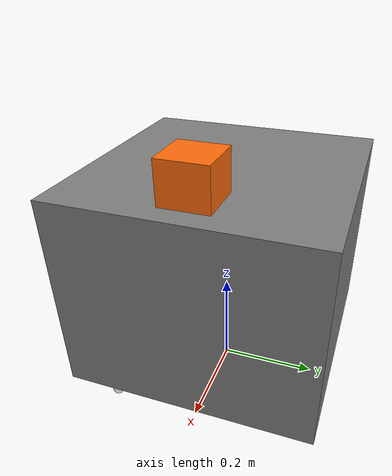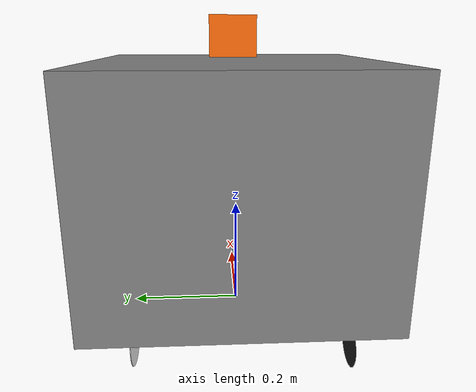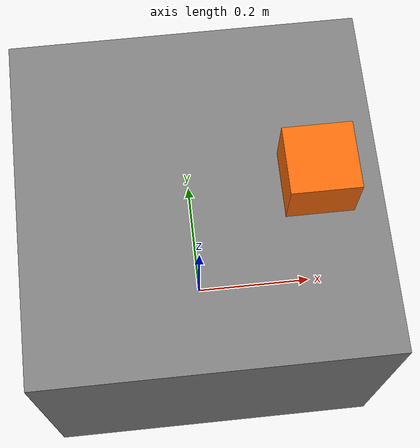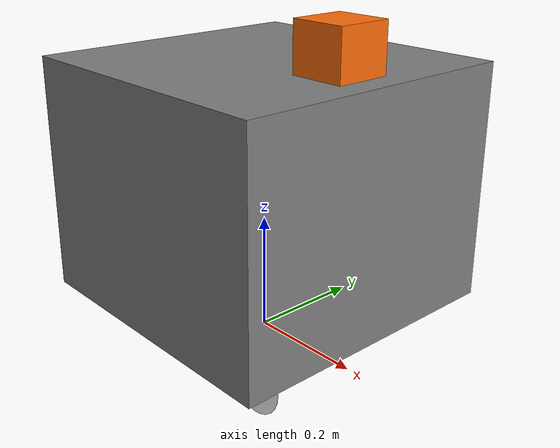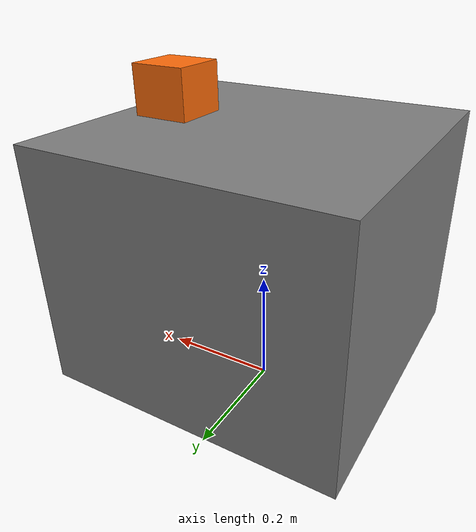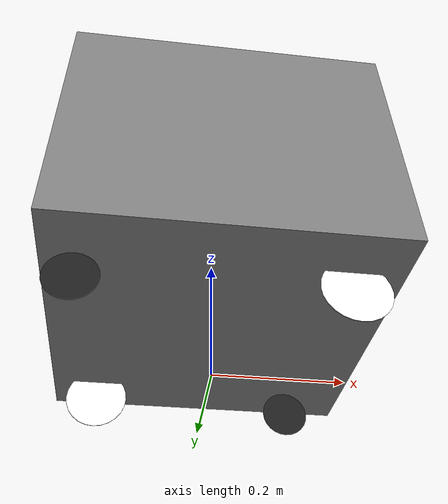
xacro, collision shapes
<?xml version="1.0"?>
<robot xmlns:xacro="http://ros.org/wiki/xacro" name="I2ws" >

    <xacro:arg name="model_dir" default="$(find tuw_gazebo_models)/models/platforms/i2ws"/>

    <!-- Import colors (for Rviz)-->
    <xacro:include filename="$(find tuw_gazebo_models)/models/materials.xacro" />

    <!-- Import robot -->
    <xacro:property name="model_dir" value="$(arg model_dir)/i2ws_body"/>
    <xacro:include filename="${model_dir}/body.xacro"/>
    <xacro:I2wsBody name="body" parent="base" mesh_collis="simplified" mesh_visual="detailed"/><!-- simplified detailed empty-->

    <!-- Import platform plugins -->
    <xacro:property name="model_dir" value="$(arg model_dir)"/>
    <xacro:include filename="${model_dir}/i2ws_plugins.xacro" />
    <xacro:I2wsRosBridgeModelPlugin/>
    <xacro:i2ws_joints_state_publisher ns=""/>
    <xacro:i2ws_joints_state_publisher ns="i2ws/ground_truth"/>

    <!-- Laser -->
    <xacro:property name="model_dir" value="$(find tuw_gazebo_models)/models/sensors/laser"/>
    <xacro:include filename="${model_dir}/Sick-LMS100.xacro"/>
    <xacro:laser name="front_laser" frame_names="front_laser" topic_names="front_laser/scan" parent="base_link" xyz="0.16 0  0.4" rpy="0 0 0" driver="cpu"/>

</robot>

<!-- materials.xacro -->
<robot xmlns:xacro="http://ros.org/wiki/xacro">

  <material name="black">
    <color rgba="0.0 0.0 0.0 1.0"/>
  </material>

  <material name="blue">
    <color rgba="0.0 0.0 0.8 1.0"/>
  </material>

  <material name="light_blue">
    <color rgba="${100/255} ${134/255} ${213/255} 1.0"/>
  </material>

  <material name="green">
    <color rgba="0.0 0.8 0.0 1.0"/>
  </material>

  <material name="light_grey">
    <color rgba="0.5 0.5 0.5 1.0"/>
  </material>

  <material name="grey">
    <color rgba="0.2 0.2 0.2 1.0"/>
  </material>

  <material name="orange">
    <color rgba="${255/255} ${108/255} ${10/255} 1.0"/>
  </material>

  <material name="brown">
    <color rgba="${222/255} ${207/255} ${195/255} 1.0"/>
  </material>

  <material name="red">
    <color rgba="0.8 0.0 0.0 1.0"/>
  </material>

  <material name="white">
    <color rgba="1.0 1.0 1.0 1.0"/>
  </material>

</robot>

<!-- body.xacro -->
<robot xmlns:xacro="http://ros.org/wiki/xacro">

<xacro:include filename="chassis.xacro"/>
<xacro:include filename="steering_wheel.xacro"/>
<xacro:include filename="swivel.xacro"/>

<xacro:macro name="I2wsBody" params="name parent mesh_collis mesh_visual" >

    <!-- base_link -->
    <link name="${parent}_link"/>

    <!-- Chassis -->
    <xacro:I2wsChassis name="${name}" parent="${parent}"/>

    <!-- Piston-Steering-Wheel modules -->
    <Steer_WheelMnt_Wheel fb="F" lr="L" parent="${name}" TransDirX=  "1" TransDirY= "-1" RotYaw="0"/>
    <Steer_WheelMnt_Wheel fb="B" lr="R" parent="${name}" TransDirX= "-1" TransDirY=  "1" RotYaw="0"/>

    <xacro:property name="swivel_contact_data">
      <mu1 value="0.7"/>
      <mu2 value="0.7"/>
      <kp value="100000000.0"/>
      <kd value="1000.0"/>
      <minDepth value="0.002"/>
    </xacro:property>
    <Swivel fb="F" lr="R" parent="${name}" TransDirX=  "1" TransDirY=  "1" RotYaw="0"> <container> <xacro:insert_block name="swivel_contact_data"/> </container> </Swivel>
    <Swivel fb="B" lr="L" parent="${name}" TransDirX= "-1" TransDirY= "-1" RotYaw="0"> <container> <xacro:insert_block name="swivel_contact_data"/> </container> </Swivel>

</xacro:macro>

</robot>

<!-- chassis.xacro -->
<robot xmlns:xacro="http://ros.org/wiki/xacro">

<xacro:include filename="$(find tuw_gazebo_models)/models/inertia_tensors.xacro"/>

<xacro:macro name="I2wsChassis" params="name parent mesh_collis:=^|simplified mesh_visual:=^|detailed model_dir:=^" >

    <xacro:property name="ParrentLink2ThisLink"> <!--parrent link to this joint tf-->
	<origin xyz="0 0 0.07" rpy="0 0 0"/>
    </xacro:property>

    <xacro:property name="ThisLink2Inert"> <!--this link 2 inertial center tf, mass data-->
	<box_inertial_with_origin x="0.5" y="0.5"  z="0.4" mass="25"> <origin xyz="0 0 0.2" rpy="0 0 0"/> </box_inertial_with_origin>
    </xacro:property>

    <xacro:property name="ThisLink2XML"> <!--this link 2 simple mesh center tf, file-->
	<origin xyz="0 0 0.20" rpy="0 0 0"/>
	<geometry> <box size="0.5 0.5 0.4" /> </geometry>
	<material name="light_grey"/>
    </xacro:property>

    <!-- choosing the appropriate collision and visual mesh -->
    <xacro:property name="ThisVisual"> <box size="0.0001 0.0001 0.0001" /> </xacro:property><!--no mesh-->
    <xacro:property name="ThisCollis"> <box size="0.0001 0.0001 0.0001" /> </xacro:property><!--no mesh-->
    <xacro:if value="${mesh_visual ==   'detailed'}"> <xacro:property name="ThisVisual">  <xacro:insert_block name="ThisLink2XML"/> </xacro:property> </xacro:if><!--detailed stl mesh-->
    <xacro:if value="${mesh_collis ==   'detailed'}"> <xacro:property name="ThisCollis">  <xacro:insert_block name="ThisLink2XML"/> </xacro:property> </xacro:if><!--detailed stl mesh-->
    <xacro:if value="${mesh_visual == 'simplified'}"> <xacro:property name="ThisVisual">  <xacro:insert_block name="ThisLink2XML"/> </xacro:property> </xacro:if><!--minimalist mesh-->
    <xacro:if value="${mesh_collis == 'simplified'}"> <xacro:property name="ThisCollis">  <xacro:insert_block name="ThisLink2XML"/> </xacro:property> </xacro:if><!--minimalist mesh-->

    <!-- joint and link definition -->
    <joint name="${parent}2${name}_joint" type="fixed">
	<parent link="${parent}_link"/>
	<child  link="${name}_link" />
	<xacro:insert_block name="ParrentLink2ThisLink" />
    </joint>

    <link name="${name}_link">
	<xacro:insert_block name="ThisLink2Inert"/>
	<visual>    <xacro:insert_block name="ThisVisual"/> </visual>
	<collision> <xacro:insert_block name="ThisCollis"/> </collision>
    </link>
    <gazebo reference="${name}_link">
	<material>Gazebo/Grey</material>
	<selfCollide>false</selfCollide>
    </gazebo>

</xacro:macro>

</robot>

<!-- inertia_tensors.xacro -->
<robot xmlns:xacro="http://ros.org/wiki/xacro">
  <xacro:property name="M_PI" value="3.1415926535897931" />

  <!-- Thanks to Martin Guenther
  see https://github.com/uos/uos_tools/blob/fuerte/uos_common_urdf/common.xacro and
  see http://answers.gazebosim.org/question/4372/the-inertia-matrix-explained/ -->
  <!-- see https://secure.wikimedia.org/wikipedia/en/wiki/List_of_moment_of_inertia_tensors -->

  <!-- #################### versions without origin #################### -->
  <xacro:macro name="sphere_inertial" params="radius mass">
    <inertial>
      <mass value="${mass}" />
      <origin xyz="0 0 0" />
      <inertia ixx="${0.4 * mass * radius * radius}" ixy="0.0" ixz="0.0"
        iyy="${0.4 * mass * radius * radius}" iyz="0.0"
        izz="${0.4 * mass * radius * radius}" />
    </inertial>
  </xacro:macro>

  <xacro:macro name="cylinder_inertial" params="radius length mass">
    <inertial>
      <mass value="${mass}" />
      <origin xyz="0 0 0" />
      <inertia ixx="${0.0833333 * mass * (3 * radius * radius + length * length)}" ixy="0.0" ixz="0.0"
        iyy="${0.0833333 * mass * (3 * radius * radius + length * length)}" iyz="0.0"
        izz="${0.5 * mass * radius * radius}" />
    </inertial>
  </xacro:macro>

  <xacro:macro name="box_inertial" params="x y z mass">
    <inertial>
      <mass value="${mass}" />
      <origin xyz="0 0 0" />
      <inertia ixx="${0.0833333 * mass * (y*y + z*z)}" ixy="0.0" ixz="0.0"
        iyy="${0.0833333 * mass * (x*x + z*z)}" iyz="0.0"
        izz="${0.0833333 * mass * (x*x + y*y)}" />
    </inertial>
  </xacro:macro>

  <!-- #################### versions with origin #################### -->
  <xacro:macro name="sphere_inertial_with_origin" params="radius mass *origin">
    <inertial>
      <mass value="${mass}" />
      <xacro:insert_block name="origin" />
      <inertia ixx="${0.4 * mass * radius * radius}" ixy="0.0" ixz="0.0"
        iyy="${0.4 * mass * radius * radius}" iyz="0.0"
        izz="${0.4 * mass * radius * radius}" />
    </inertial>
  </xacro:macro>

  <xacro:macro name="cylinder_inertial_with_origin" params="radius length mass xyz rpy">
    <inertial>
      <mass value="${mass}" />
      <origin xyz="${xyz}" rpy="${rpy}" />
      <inertia ixx="${0.0833333 * mass * (3 * radius * radius + length * length)}" ixy="0.0" ixz="0.0"
        iyy="${0.0833333 * mass * (3 * radius * radius + length * length)}" iyz="0.0"
        izz="${0.5 * mass * radius * radius}" />
    </inertial>
  </xacro:macro>

  <xacro:macro name="box_inertial_with_origin" params="x y z mass xyz">
    <inertial>
      <mass value="${mass}" />
      <origin xyz="${xyz}" />
      <inertia ixx="${0.0833333 * mass * (y*y + z*z)}" ixy="0.0" ixz="0.0"
        iyy="${0.0833333 * mass * (x*x + z*z)}" iyz="0.0"
        izz="${0.0833333 * mass * (x*x + y*y)}" />
    </inertial>
  </xacro:macro>

</robot>

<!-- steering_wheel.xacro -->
<robot xmlns:xacro="http://ros.org/wiki/xacro" name="I2wsSSW" >

<xacro:include filename="steering_mount.xacro"/>
<xacro:include filename="wheel_mount.xacro"/>
<xacro:include filename="wheel.xacro"/>

<xacro:macro name="Steer_WheelMnt_Wheel" params="fb lr parent TransDirX TransDirY RotYaw"> <!--fb : front, back ; lr: left, right -->

	<xacro:property name="steering_mount_name" value="steermnt" />
	<xacro:property name="wheel_mount_name"    value="wheelmnt" />
	<xacro:property name="wheel_name"          value="wheel" />

	<xacro:I2wsSteeringMount name="${steering_mount_name}" fb="${fb}" lr="${lr}" parent="${parent}" TransDirX="${TransDirX}" TransDirY="${TransDirY}" RotYaw="${RotYaw}"/>
	<xacro:I2wsWheelMount    name="${wheel_mount_name}"    fb="${fb}" lr="${lr}" parent="${steering_mount_name}"/>
	<xacro:I2wsWheel         name="${wheel_name}"          fb="${fb}" lr="${lr}" parent="${wheel_mount_name}"   wheel_radius="0.05" wheel_length="0.001"/>

</xacro:macro>

</robot>

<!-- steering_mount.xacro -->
<robot xmlns:xacro="http://ros.org/wiki/xacro">

<xacro:include filename="$(find tuw_gazebo_models)/models/inertia_tensors.xacro"/>

<xacro:macro name="I2wsSteeringMount" params="name parent fb lr TransDirX TransDirY RotYaw mesh_collis:=^|simplified mesh_visual:=^|detailed model_dir:=^">

    <xacro:property name="x_ParrentLink2Piston_Link"  value="0.1750" />
    <xacro:property name="y_ParrentLink2Piston_Link"  value="0.1744" />
    <xacro:property name="z_ParrentLink2Piston_Link"  value="${0.3400-0.309-0.060}" />

    <xacro:property name="ParrentLink2ThisLink"> <!--parrent link to this joint tf-->
	<origin xyz="${x_ParrentLink2Piston_Link*TransDirX} ${y_ParrentLink2Piston_Link*TransDirY} ${z_ParrentLink2Piston_Link}"  rpy="0 0 ${RotYaw-pi/2}"/>
    </xacro:property>

    <xacro:property name="ThisLink2Inert"> <!--this link 2 inertial center tf, mass data-->
	<cylinder_inertial_with_origin radius="0.04" length="0.1666" mass="0.251"> <origin xyz="0 0 ${-0.23+0.309+0.060}" rpy="0 0 0"/> </cylinder_inertial_with_origin>
    </xacro:property>

    <xacro:property name="ThisLink2STL"> <!--this link 2 mesh center tf, file-->
	<origin xyz="0 0 ${+0.309-0.371+0.060}" rpy="${-pi/2} 0 0"/>
	<geometry> <mesh filename="file://${model_dir}/meshes/steering_mount_red.stl"/> </geometry>
	<material name="red"/>
    </xacro:property>

    <xacro:property name="ThisLink2XML"> <!--this link 2 simple mesh center tf, file-->
	<origin xyz="0 0 ${-0.23+0.309+0.060}" rpy="0 0 0"/>
	<geometry> <cylinder length="0.1666" radius="0.04"/> </geometry>
	<material name="red"/>
    </xacro:property>

    <!-- choosing the appropriate collision and visual mesh -->
    <xacro:property name="ThisVisual"> <box size="0.0001 0.0001 0.0001" /> </xacro:property><!--no mesh-->
    <xacro:property name="ThisCollis"> <box size="0.0001 0.0001 0.0001" /> </xacro:property><!--no mesh-->
    <xacro:if value="${mesh_visual ==   'detailed'}"> <xacro:property name="ThisVisual">  <xacro:insert_block name="ThisLink2STL"/> </xacro:property> </xacro:if><!--detailed stl mesh-->
    <xacro:if value="${mesh_collis ==   'detailed'}"> <xacro:property name="ThisCollis">  <xacro:insert_block name="ThisLink2STL"/> </xacro:property> </xacro:if><!--detailed stl mesh-->
    <xacro:if value="${mesh_visual == 'simplified'}"> <xacro:property name="ThisVisual">  <xacro:insert_block name="ThisLink2XML"/> </xacro:property> </xacro:if><!--minimalist mesh-->
    <xacro:if value="${mesh_collis == 'simplified'}"> <xacro:property name="ThisCollis">  <xacro:insert_block name="ThisLink2XML"/> </xacro:property> </xacro:if><!--minimalist mesh-->

    <!-- joint and link definition -->
    <joint name="${parent}2${name}${fb}${lr}_joint" type="fixed"><!--prismatic-->
	<parent link="${parent}_link"/>
	<child  link="${name}${fb}${lr}_link"/>
	<axis   xyz="0 0 1"/>
	<!--limit effort= "10" velocity="0.55" lower= "-0.17" upper="0.0"/-->
	<!--dynamics damping="0.0" friction="0.0"/-->
	<xacro:insert_block name="ParrentLink2ThisLink" />
    </joint>

    <link name="${name}${fb}${lr}_link">
	<xacro:insert_block name="ThisLink2Inert"/>
	<visual>    <xacro:insert_block name="ThisVisual"/> </visual>
	<collision> <xacro:insert_block name="ThisCollis"/> </collision>
    </link>
    <gazebo reference="${name}${fb}${lr}_link">
	<material>Gazebo/Red</material>
	<selfCollide>false</selfCollide>
    </gazebo>

</xacro:macro>

</robot>

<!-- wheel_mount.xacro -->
<robot xmlns:xacro="http://ros.org/wiki/xacro">

<xacro:include filename="$(find tuw_gazebo_models)/models/inertia_tensors.xacro"/>

<xacro:macro name="I2wsWheelMount" params="name parent fb lr mesh_collis:=^|simplified mesh_visual:=^|detailed model_dir:=^">

    <xacro:property name="ParrentLink2ThisLink"> <!--parrent link to this joint tf-->
	<origin xyz="0 0 0"  rpy="0 0 0"/>
    </xacro:property>

    <xacro:property name="ThisLink2Inert"> <!--this link 2 inertial center tf, mass data-->
	<cylinder_inertial_with_origin radius="0.05" length="0.025" mass="0.197"> <origin xyz="0 0 0" rpy="0 ${-pi/2} 0"/> </cylinder_inertial_with_origin>
    </xacro:property>

    <xacro:property name="ThisLink2STL"> <!--this link 2 mesh center tf, file-->
	<origin xyz="0 0 0" rpy="${-pi/2} 0 0"/>
	<geometry> <mesh filename="file://${model_dir}/meshes/wheel_mount_red.stl"/> </geometry>
	<material name="orange"/>
    </xacro:property>

    <xacro:property name="ThisLink2XML"> <!--this link 2 simple mesh center tf, file-->
	<origin xyz="0 0 0" rpy="${-pi/2} 0 0"/>
	<geometry> <box size="0.0001 0.0001 0.0001" /> </geometry>
	<material name="orange"/>
    </xacro:property>

    <!-- choosing the appropriate collision and visual mesh -->
    <xacro:property name="ThisVisual"> <box size="0.0001 0.0001 0.0001" /> </xacro:property><!--no mesh-->
    <xacro:property name="ThisCollis"> <box size="0.0001 0.0001 0.0001" /> </xacro:property><!--no mesh-->
    <xacro:if value="${mesh_visual ==   'detailed'}"> <xacro:property name="ThisVisual">  <xacro:insert_block name="ThisLink2STL"/> </xacro:property> </xacro:if><!--detailed stl mesh-->
    <xacro:if value="${mesh_collis ==   'detailed'}"> <xacro:property name="ThisCollis">  <xacro:insert_block name="ThisLink2STL"/> </xacro:property> </xacro:if><!--detailed stl mesh-->
    <xacro:if value="${mesh_visual == 'simplified'}"> <xacro:property name="ThisVisual">  <xacro:insert_block name="ThisLink2XML"/> </xacro:property> </xacro:if><!--minimalist mesh-->
    <xacro:if value="${mesh_collis == 'simplified'}"> <xacro:property name="ThisCollis">  <xacro:insert_block name="ThisLink2XML"/> </xacro:property> </xacro:if><!--minimalist mesh-->

    <!-- joint and link definition -->
    <joint name="${parent}${fb}${lr}2${name}${fb}${lr}_joint" type="revolute"><!--revolute  continuous-->
	<parent link="${parent}${fb}${lr}_link"/>
	<child  link="${name}${fb}${lr}_link"/>
	<axis xyz=" 0 0 1"/>
	<limit effort="12" velocity="12" lower= "${-M_PI}" upper="${M_PI}" /> <!--velocity="5" -->
	<xacro:insert_block name="ParrentLink2ThisLink" />
    </joint>

    <link name="${name}${fb}${lr}_link">
	<xacro:insert_block name="ThisLink2Inert"/>
	<visual>    <xacro:insert_block name="ThisVisual"/> </visual>
	<collision> <xacro:insert_block name="ThisCollis"/> </collision>
    </link>
    <gazebo reference="${name}${fb}${lr}_link">
	<material>Gazebo/Orange</material>
	<selfCollide>false</selfCollide>
    </gazebo>

</xacro:macro>

</robot>

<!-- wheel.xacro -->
<robot xmlns:xacro="http://ros.org/wiki/xacro">

<xacro:include filename="$(find tuw_gazebo_models)/models/inertia_tensors.xacro"/>

<xacro:macro name="I2wsWheel" params="name parent fb lr wheel_radius wheel_length mesh_collis:=^|simplified mesh_visual:=^|detailed model_dir:=^">

    <xacro:property name="ParrentLink2ThisLink"> <!--parrent link to this joint tf-->
	<origin xyz="0 0 0"  rpy="${pi} ${pi/2} 0"/>
    </xacro:property>

    <xacro:property name="ThisLink2Inert"> <!--this link 2 inertial center tf, mass data-->
	<cylinder_inertial radius="${wheel_radius}" length="${wheel_length}" mass="0.197"/>
    </xacro:property>

    <xacro:property name="ThisLink2STL"> <!--this link 2 mesh center tf, file-->
	<origin xyz="0 0 0" rpy="0 ${pi/2} 0"/>
	<geometry> <mesh filename="file://${model_dir}/meshes/wheel_red.stl"/> </geometry>
	<material name="white"/>
    </xacro:property>

    <xacro:property name="ThisLink2XML"> <!--this link 2 simple mesh center tf, file-->
	<origin xyz="0 0 0" rpy="0 0 0"/>
	<geometry> <cylinder radius="${wheel_radius}" length="${wheel_length}" /> </geometry>
	<material name="white"/>
    </xacro:property>

    <!-- choosing the appropriate collision and visual mesh -->
    <xacro:property name="ThisVisual"> <xacro:insert_block name="ThisLink2XML"/> </xacro:property><!--minimalist mesh-->
    <xacro:property name="ThisCollis"> <xacro:insert_block name="ThisLink2XML"/> </xacro:property><!--minimalist mesh-->
    <xacro:if value="${mesh_visual ==   'detailed'}"> <xacro:property name="ThisVisual">  <xacro:insert_block name="ThisLink2STL"/> </xacro:property> </xacro:if><!--detailed stl mesh-->
    <xacro:if value="${mesh_collis ==   'detailed'}"> <xacro:property name="ThisCollis">  <xacro:insert_block name="ThisLink2STL"/> </xacro:property> </xacro:if><!--detailed stl mesh-->

    <!-- joint and link definition -->
    <joint name="${parent}${fb}${lr}2${name}${fb}${lr}_joint" type="continuous">
	<parent link="${parent}${fb}${lr}_link" />
	<child  link="${name}${fb}${lr}_link" />
	<axis   xyz="0 0 1"/>
	<xacro:insert_block name="ParrentLink2ThisLink" />
    </joint>

    <link name="${name}${fb}${lr}_link">
	<xacro:insert_block name="ThisLink2Inert"/>
	<visual>    <xacro:insert_block name="ThisVisual"/> </visual>
	<collision> <xacro:insert_block name="ThisCollis"/> </collision>
    </link>
    <gazebo reference="${name}${fb}${lr}_link">
	<material>Gazebo/White</material>
	<selfCollide>false</selfCollide>
	<mu1 value="5.9"/>
	<mu2 value="5.9"/>

	<minDepth value="0.002"/>
	<kp value="1000000.0"/>
	<kd value="10.0"/>
    </gazebo>

</xacro:macro>

</robot>

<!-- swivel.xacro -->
<robot xmlns:xacro="http://ros.org/wiki/xacro">
  <xacro:property name="M_PI" value="3.1415926535897931" />

  <xacro:macro name="Swivel" params="parent fb lr TransDirX TransDirY RotYaw **contact_data model_dir:=^">

  <xacro:property name="x_ParrentLink2Piston_Link"  value= "0.1750" />
  <xacro:property name="y_ParrentLink2Piston_Link"  value= "0.1744" />
  <xacro:property name="z_ParrentLink2Piston_Link"  value="-0.0235" />

  <xacro:property name="ParrentLink2ThisLink"> <!--parrent link to this joint tf-->
      <origin xyz="${x_ParrentLink2Piston_Link*TransDirX} ${y_ParrentLink2Piston_Link*TransDirY} ${z_ParrentLink2Piston_Link}"  rpy="0 0 ${RotYaw}"/>
  </xacro:property>

  <!-- Swivel -->
  <joint name="chassis_swivel${fb}${lr}_joint" type="continuous">
    <xacro:insert_block name="ParrentLink2ThisLink"/>
    <axis xyz="0 0 1"/>
    <anchor xyz="0 0 0"/>
    <limit effort="100" velocity="100" k_velocity="0"/>
    <joint_properties damping="0.0" friction="0.0"/>
    <parent link="${parent}_link"/>
    <child link="swivel${fb}${lr}"/>
  </joint>
  <link name="swivel${fb}${lr}">
    <box_inertial_with_origin x="0.07" y="0.07" z="0.05" mass="0.1"> <origin xyz="0 0 0" rpy="0 0 0"/> </box_inertial_with_origin>
    <visual>
      <origin xyz="0 0 0" rpy="0 0 0"/>
      <geometry>
        <mesh filename="file://${model_dir}/meshes/swivel.stl"/>
      </geometry>
      <material name="swivel">
        <color rgba="0.5 0.5 0.5 1"/>
      </material>
    </visual>
    <collision>
      <origin xyz="0 0 0" rpy="0 0 0"/>
      <geometry>
        <box size="0.001 0.001 0.001"/>
      </geometry>
    </collision>
  </link>
  <gazebo reference="swivel${fb}${lr}">
    <material value="Gazebo/Grey"/>
  </gazebo>

  <!-- Center Wheel -->
  <joint name="swivel${fb}${lr}_wheel_joint" type="continuous">
    <origin xyz="-0.026 0 -0.016" rpy="0 0 0"/>
    <axis xyz="0 1 0"/>
    <anchor xyz="0 0 0"/>
    <limit effort="100" velocity="100" k_velocity="0"/>
    <joint_properties damping="0.0" friction="0.0"/>
    <parent link="swivel${fb}${lr}"/>
    <child link="center_wheel${fb}${lr}"/>
  </joint>
  <link name="center_wheel${fb}${lr}">
    <cylinder_inertial_with_origin radius="0.0375" length="0.03" mass="0.1"> <origin xyz="0 0 0" rpy="${pi/2} 0 0"/> </cylinder_inertial_with_origin>
    <visual>
      <origin xyz="0 0 0" rpy="0 0 0"/>
      <geometry>
        <mesh filename="file://${model_dir}/meshes/center_wheel.stl"/>
      </geometry>
      <material name="WheelBlack">
        <color rgba="0.117 0.117 0.117 1"/>
      </material>
    </visual>
    <collision>
      <origin xyz="0 0 0" rpy="${-3.1415927/2.0} 0 0"/>
      <geometry>
        <cylinder radius="0.0375" length="0.001"/> <!--radius="0.0375"-->
      </geometry>
    </collision>
  </link>
  <gazebo reference="center_wheel${fb}${lr}">
    <material value="Gazebo/Black"/>
    <xacro:insert_block name="contact_data"/>
  </gazebo>

  <!-- Center Hubcap -->
  <joint name="wheel_hubcap${fb}${lr}_joint" type="fixed">
    <origin xyz="0 0 0" rpy="0 0 0"/>
    <parent link="center_wheel${fb}${lr}"/>
    <child link="center_hubcap${fb}${lr}"/>
  </joint>
  <link name="center_hubcap${fb}${lr}">
    <cylinder_inertial_with_origin radius="0.01" length="0.03" mass="0.01"> <origin xyz="0 0 0" rpy="${pi/2} 0 0"/> </cylinder_inertial_with_origin>
    <visual>
      <origin xyz="0 0 0" rpy="0 0 0"/>
      <geometry>
        <mesh filename="file://${model_dir}/meshes/center_hubcap.stl"/>
      </geometry>
      <material name="swivel">
        <color rgba="0.5 0.5 0.5 1"/>
      </material>
    </visual>
    <collision>
      <origin xyz="0 0 0" rpy="0 0 0"/>
      <geometry>
        <box size="0.001 0.001 0.001"/>
      </geometry>
    </collision>
  </link>
  <gazebo reference="center_hubcap${fb}${lr}">
    <material value="Gazebo/Grey"/>
    <xacro:insert_block name="contact_data"/>
  </gazebo>

  </xacro:macro>

</robot>

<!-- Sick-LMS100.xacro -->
<robot xmlns:xacro="http://ros.org/wiki/xacro">

<!-- Front Laser -->
<xacro:macro name="laser" params="name frame_names topic_names parent xyz rpy driver:=cpu visualize:=true model_dir:=^">

    <xacro:if value="${driver == 'gpu'}">
      <xacro:property name="sensor_type" value="gpu_ray"/>
      <xacro:property name="driver_type" value="libgazebo_ros_gpu_laser.so"/>
    </xacro:if>
    <xacro:if value="${driver == 'cpu'}">
      <xacro:property name="sensor_type" value="ray"/>
      <xacro:property name="driver_type" value="libgazebo_ros_laser.so"/>
    </xacro:if>

    <joint name="${parent}_${name}_chassis_joint" type="fixed">
	<axis xyz="0 0 1" />
	<origin xyz="${xyz}" rpy="${rpy}"/>
	<parent link="${parent}"/>
	<child link="${name}_chassis"/>
    </joint>

    <material name="SickBlue">
	<color rgba="${255/255} ${108/255} ${10/255} 1.0"/>
    </material>

    <link name="${name}_chassis">
	<collision>
	    <origin xyz="0 0 0.0751" rpy="0 0 0"/>
	    <geometry>
		<box size="0.094 0.094 0.152"/>
	    </geometry>
	</collision>
	<visual>
	    <geometry>
		<mesh filename="file://${model_dir}/meshes/Sick-LMS100.dae"/>
	    </geometry>
	    <material name="SickBlue"/>
	</visual>
	<xacro:box_inertial x="0.094" y="0.094"  z="0.152" mass="1.1" />
    </link>

    <joint name="${name}_chassis_${name}_joint" type="fixed">
	<axis xyz="0 0 1" />
	<origin xyz="0 0 0.115" rpy="0 0 0"/>
	<parent link="${name}_chassis"/>
	<child link="${name}"/>
    </joint>

    <link name="${name}"/>
    <gazebo reference="${name}">
	<sensor name="${name}" type="${sensor_type}">
	    <pose>0 0 0 0 0 0</pose>
	    <update_rate>25</update_rate>
	    <always_on>1</always_on>
	    <visualize>${visualize}</visualize>
	    <ray>
		<scan>
		    <horizontal>
			<!-- Sick-LMS100 has  683 steps with 0.35139 Degree resolution-->
			<resolution>1</resolution>
			<max_angle>2.356000000</max_angle> <min_angle>-2.356000000</min_angle> <samples>1080</samples>     <!-- 135 to -135 Degree -->
			<!-- 120 to -120 Degree -->
			<!-- 100 to -100 Degree -->
			<!-- 110 to -110 Degree -->
		    </horizontal>
		</scan>
		<range>
		    <min>0.15</min>
		    <max>20.0</max>
		    <resolution>0.01</resolution>
		</range>
		<noise>
		    <type>gaussian</type>
		    <mean>0.0</mean>
		    <stddev>0.005</stddev>
		</noise>
	    </ray>

	    <plugin name="gazebo_ros_laser_SICK_driver" filename="${driver_type}" >
		<rosDebugLevel>Debug</rosDebugLevel>
		<robotNamespace></robotNamespace>
		<topicName>${topic_names}</topicName>
		<frameName>${frame_names}</frameName>
		<rangeMin>0.4</rangeMin>
	    </plugin>
	</sensor>
    </gazebo>
</xacro:macro>

</robot>
